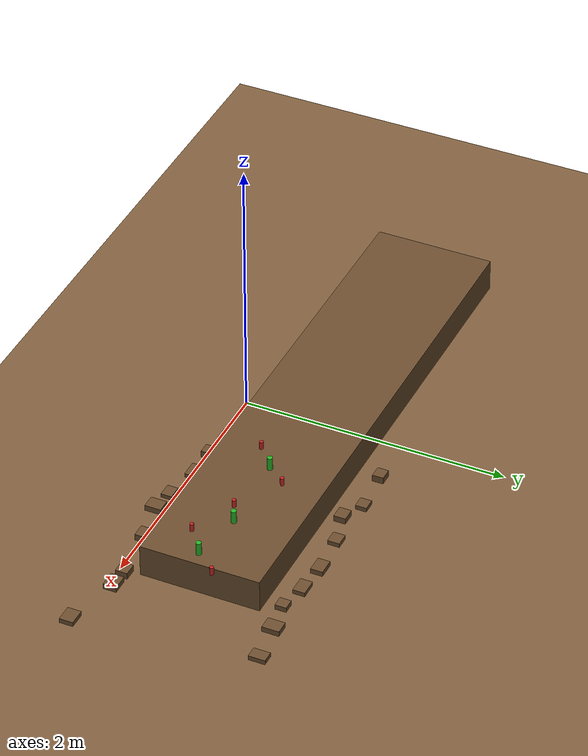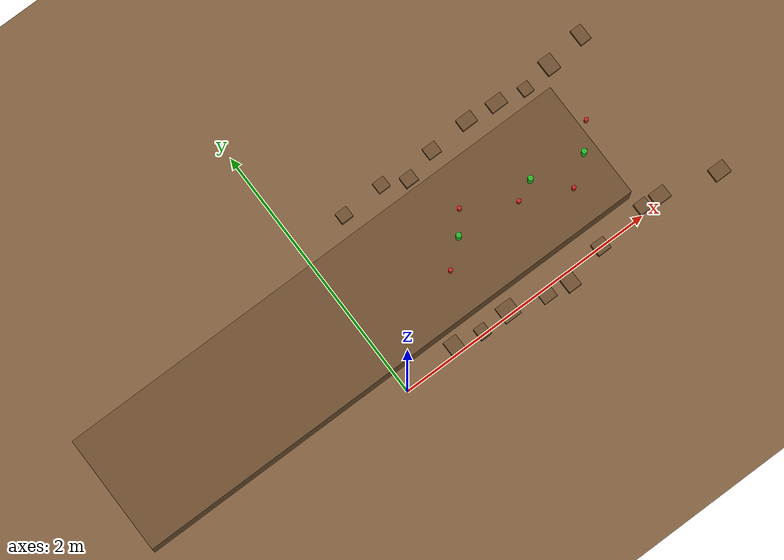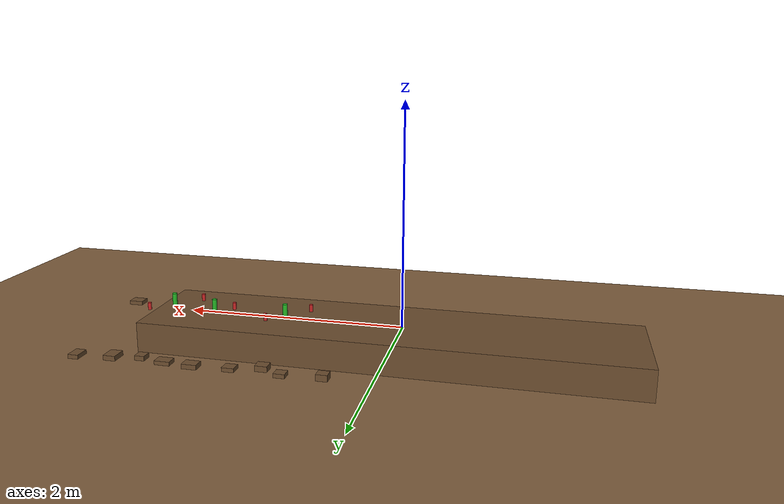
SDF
<sdf version="1.9">
 <world name="robot_strike">
  <physics name="1ms" type="ignored">
   <max_step_size>0.001</max_step_size>
   <real_time_factor>1.0</real_time_factor>
  </physics>
  <plugin filename="ignition-gazebo-physics-system" name="ignition::gazebo::systems::Physics"/>
  <plugin filename="ignition-gazebo-imu-system" name="ignition::gazebo::systems::Imu"/>
  <plugin filename="ignition-gazebo-scene-broadcaster-system" name="ignition::gazebo::systems::SceneBroadcaster"/>
  <plugin filename="ignition-gazebo-user-commands-system" name="ignition::gazebo::systems::UserCommands"/>
  <light type="directional" name="sun">
   <pose>0 0 10 0 0 0</pose>
   <diffuse>1 1 1 1</diffuse>
   <specular>0.3 0.3 0.3 1</specular>
   <direction>-0.4 0.4 -0.85</direction>
  </light>
  <model name="furrow_floor">
   <static>true</static>
   <pose>0 0.6 0 0.000000 0 0</pose>
   <link name="link">
    <collision name="c">
     <geometry><plane><normal>0 0 1</normal><size>100 100</size></plane></geometry>
     <surface><friction><ode><mu>1.0</mu><mu2>1.0</mu2></ode></friction></surface>
    </collision>
    <visual name="v">
     <geometry><plane><normal>0 0 1</normal><size>100 100</size></plane></geometry>
     <material><ambient>0.30 0.22 0.14 1</ambient><diffuse>0.50 0.37 0.24 1</diffuse></material>
    </visual>
   </link>
  </model>
  <model name="bed">
   <static>true</static>
   <pose>0 0.600 0.125 0 0 0</pose>
   <link name="link">
    <collision name="c"><geometry><box><size>4.00 0.90 0.25</size></box></geometry></collision>
    <visual name="v">
     <geometry><box><size>4.00 0.90 0.25</size></box></geometry>
     <material><ambient>0.25 0.17 0.10 1</ambient><diffuse>0.42 0.30 0.18 1</diffuse></material>
    </visual>
   </link>
  </model>
  <model name="clod_0">
   <static>true</static>
   <pose>0.437 0.059 0.022 0 0 0</pose>
   <link name="l">
    <collision name="c">
     <geometry><box><size>0.105 0.109 0.044</size></box></geometry>
     <surface><friction><ode><mu>1.0</mu><mu2>1.0</mu2></ode></friction></surface>
    </collision>
    <visual name="v">
     <geometry><box><size>0.105 0.109 0.044</size></box></geometry>
     <material><ambient>0.28 0.20 0.12 1</ambient><diffuse>0.42 0.30 0.18 1</diffuse></material>
    </visual>
   </link>
  </model>
  <model name="clod_1">
   <static>true</static>
   <pose>0.646 0.018 0.027 0 0 0</pose>
   <link name="l">
    <collision name="c">
     <geometry><box><size>0.085 0.095 0.054</size></box></geometry>
     <surface><friction><ode><mu>1.0</mu><mu2>1.0</mu2></ode></friction></surface>
    </collision>
    <visual name="v">
     <geometry><box><size>0.085 0.095 0.054</size></box></geometry>
     <material><ambient>0.28 0.20 0.12 1</ambient><diffuse>0.42 0.30 0.18 1</diffuse></material>
    </visual>
   </link>
  </model>
  <model name="clod_2">
   <static>true</static>
   <pose>0.872 0.027 0.016 0 0 0</pose>
   <link name="l">
    <collision name="c">
     <geometry><box><size>0.129 0.128 0.031</size></box></geometry>
     <surface><friction><ode><mu>1.0</mu><mu2>1.0</mu2></ode></friction></surface>
    </collision>
    <visual name="v">
     <geometry><box><size>0.129 0.128 0.031</size></box></geometry>
     <material><ambient>0.28 0.20 0.12 1</ambient><diffuse>0.42 0.30 0.18 1</diffuse></material>
    </visual>
   </link>
  </model>
  <model name="clod_3">
   <static>true</static>
   <pose>1.150 -0.048 0.015 0 0 0</pose>
   <link name="l">
    <collision name="c">
     <geometry><box><size>0.106 0.083 0.030</size></box></geometry>
     <surface><friction><ode><mu>1.0</mu><mu2>1.0</mu2></ode></friction></surface>
    </collision>
    <visual name="v">
     <geometry><box><size>0.106 0.083 0.030</size></box></geometry>
     <material><ambient>0.28 0.20 0.12 1</ambient><diffuse>0.42 0.30 0.18 1</diffuse></material>
    </visual>
   </link>
  </model>
  <model name="clod_4">
   <static>true</static>
   <pose>1.327 -0.066 0.022 0 0 0</pose>
   <link name="l">
    <collision name="c">
     <geometry><box><size>0.102 0.122 0.044</size></box></geometry>
     <surface><friction><ode><mu>1.0</mu><mu2>1.0</mu2></ode></friction></surface>
    </collision>
    <visual name="v">
     <geometry><box><size>0.102 0.122 0.044</size></box></geometry>
     <material><ambient>0.28 0.20 0.12 1</ambient><diffuse>0.42 0.30 0.18 1</diffuse></material>
    </visual>
   </link>
  </model>
  <model name="clod_5">
   <static>true</static>
   <pose>1.640 -0.000 0.025 0 0 0</pose>
   <link name="l">
    <collision name="c">
     <geometry><box><size>0.103 0.094 0.050</size></box></geometry>
     <surface><friction><ode><mu>1.0</mu><mu2>1.0</mu2></ode></friction></surface>
    </collision>
    <visual name="v">
     <geometry><box><size>0.103 0.094 0.050</size></box></geometry>
     <material><ambient>0.28 0.20 0.12 1</ambient><diffuse>0.42 0.30 0.18 1</diffuse></material>
    </visual>
   </link>
  </model>
  <model name="clod_6">
   <static>true</static>
   <pose>2.036 0.048 0.026 0 0 0</pose>
   <link name="l">
    <collision name="c">
     <geometry><box><size>0.096 0.091 0.051</size></box></geometry>
     <surface><friction><ode><mu>1.0</mu><mu2>1.0</mu2></ode></friction></surface>
    </collision>
    <visual name="v">
     <geometry><box><size>0.096 0.091 0.051</size></box></geometry>
     <material><ambient>0.28 0.20 0.12 1</ambient><diffuse>0.42 0.30 0.18 1</diffuse></material>
    </visual>
   </link>
  </model>
  <model name="clod_7">
   <static>true</static>
   <pose>2.175 0.037 0.021 0 0 0</pose>
   <link name="l">
    <collision name="c">
     <geometry><box><size>0.122 0.099 0.042</size></box></geometry>
     <surface><friction><ode><mu>1.0</mu><mu2>1.0</mu2></ode></friction></surface>
    </collision>
    <visual name="v">
     <geometry><box><size>0.122 0.099 0.042</size></box></geometry>
     <material><ambient>0.28 0.20 0.12 1</ambient><diffuse>0.42 0.30 0.18 1</diffuse></material>
    </visual>
   </link>
  </model>
  <model name="clod_8">
   <static>true</static>
   <pose>2.605 -0.070 0.018 0 0 0</pose>
   <link name="l">
    <collision name="c">
     <geometry><box><size>0.126 0.103 0.036</size></box></geometry>
     <surface><friction><ode><mu>1.0</mu><mu2>1.0</mu2></ode></friction></surface>
    </collision>
    <visual name="v">
     <geometry><box><size>0.126 0.103 0.036</size></box></geometry>
     <material><ambient>0.28 0.20 0.12 1</ambient><diffuse>0.42 0.30 0.18 1</diffuse></material>
    </visual>
   </link>
  </model>
  <model name="clod_9">
   <static>true</static>
   <pose>0.379 1.218 0.027 0 0 0</pose>
   <link name="l">
    <collision name="c">
     <geometry><box><size>0.093 0.084 0.053</size></box></geometry>
     <surface><friction><ode><mu>1.0</mu><mu2>1.0</mu2></ode></friction></surface>
    </collision>
    <visual name="v">
     <geometry><box><size>0.093 0.084 0.053</size></box></geometry>
     <material><ambient>0.28 0.20 0.12 1</ambient><diffuse>0.42 0.30 0.18 1</diffuse></material>
    </visual>
   </link>
  </model>
  <model name="clod_10">
   <static>true</static>
   <pose>0.708 1.236 0.017 0 0 0</pose>
   <link name="l">
    <collision name="c">
     <geometry><box><size>0.092 0.085 0.034</size></box></geometry>
     <surface><friction><ode><mu>1.0</mu><mu2>1.0</mu2></ode></friction></surface>
    </collision>
    <visual name="v">
     <geometry><box><size>0.092 0.085 0.034</size></box></geometry>
     <material><ambient>0.28 0.20 0.12 1</ambient><diffuse>0.42 0.30 0.18 1</diffuse></material>
    </visual>
   </link>
  </model>
  <model name="clod_11">
   <static>true</static>
   <pose>0.882 1.155 0.023 0 0 0</pose>
   <link name="l">
    <collision name="c">
     <geometry><box><size>0.102 0.090 0.047</size></box></geometry>
     <surface><friction><ode><mu>1.0</mu><mu2>1.0</mu2></ode></friction></surface>
    </collision>
    <visual name="v">
     <geometry><box><size>0.102 0.090 0.047</size></box></geometry>
     <material><ambient>0.28 0.20 0.12 1</ambient><diffuse>0.42 0.30 0.18 1</diffuse></material>
    </visual>
   </link>
  </model>
  <model name="clod_12">
   <static>true</static>
   <pose>1.127 1.220 0.017 0 0 0</pose>
   <link name="l">
    <collision name="c">
     <geometry><box><size>0.101 0.091 0.033</size></box></geometry>
     <surface><friction><ode><mu>1.0</mu><mu2>1.0</mu2></ode></friction></surface>
    </collision>
    <visual name="v">
     <geometry><box><size>0.101 0.091 0.033</size></box></geometry>
     <material><ambient>0.28 0.20 0.12 1</ambient><diffuse>0.42 0.30 0.18 1</diffuse></material>
    </visual>
   </link>
  </model>
  <model name="clod_13">
   <static>true</static>
   <pose>1.440 1.242 0.020 0 0 0</pose>
   <link name="l">
    <collision name="c">
     <geometry><box><size>0.124 0.091 0.039</size></box></geometry>
     <surface><friction><ode><mu>1.0</mu><mu2>1.0</mu2></ode></friction></surface>
    </collision>
    <visual name="v">
     <geometry><box><size>0.124 0.091 0.039</size></box></geometry>
     <material><ambient>0.28 0.20 0.12 1</ambient><diffuse>0.42 0.30 0.18 1</diffuse></material>
    </visual>
   </link>
  </model>
  <model name="clod_14">
   <static>true</static>
   <pose>1.679 1.220 0.017 0 0 0</pose>
   <link name="l">
    <collision name="c">
     <geometry><box><size>0.129 0.091 0.033</size></box></geometry>
     <surface><friction><ode><mu>1.0</mu><mu2>1.0</mu2></ode></friction></surface>
    </collision>
    <visual name="v">
     <geometry><box><size>0.129 0.091 0.033</size></box></geometry>
     <material><ambient>0.28 0.20 0.12 1</ambient><diffuse>0.42 0.30 0.18 1</diffuse></material>
    </visual>
   </link>
  </model>
  <model name="clod_15">
   <static>true</static>
   <pose>1.897 1.176 0.019 0 0 0</pose>
   <link name="l">
    <collision name="c">
     <geometry><box><size>0.084 0.085 0.039</size></box></geometry>
     <surface><friction><ode><mu>1.0</mu><mu2>1.0</mu2></ode></friction></surface>
    </collision>
    <visual name="v">
     <geometry><box><size>0.084 0.085 0.039</size></box></geometry>
     <material><ambient>0.28 0.20 0.12 1</ambient><diffuse>0.42 0.30 0.18 1</diffuse></material>
    </visual>
   </link>
  </model>
  <model name="clod_16">
   <static>true</static>
   <pose>2.129 1.214 0.021 0 0 0</pose>
   <link name="l">
    <collision name="c">
     <geometry><box><size>0.103 0.128 0.041</size></box></geometry>
     <surface><friction><ode><mu>1.0</mu><mu2>1.0</mu2></ode></friction></surface>
    </collision>
    <visual name="v">
     <geometry><box><size>0.103 0.128 0.041</size></box></geometry>
     <material><ambient>0.28 0.20 0.12 1</ambient><diffuse>0.42 0.30 0.18 1</diffuse></material>
    </visual>
   </link>
  </model>
  <model name="clod_17">
   <static>true</static>
   <pose>2.429 1.251 0.018 0 0 0</pose>
   <link name="l">
    <collision name="c">
     <geometry><box><size>0.088 0.125 0.035</size></box></geometry>
     <surface><friction><ode><mu>1.0</mu><mu2>1.0</mu2></ode></friction></surface>
    </collision>
    <visual name="v">
     <geometry><box><size>0.088 0.125 0.035</size></box></geometry>
     <material><ambient>0.28 0.20 0.12 1</ambient><diffuse>0.42 0.30 0.18 1</diffuse></material>
    </visual>
   </link>
  </model>
  <model name="weed_0">
   <static>true</static>
   <pose>0.700 0.450 0.280 0 0 0</pose>
   <link name="l">
    <visual name="v">
     <geometry><cylinder><radius>0.015</radius><length>0.06</length></cylinder></geometry>
     <material><ambient>0.55 0.10 0.10 1</ambient><diffuse>0.77 0.14 0.14 1</diffuse></material>
    </visual>
   </link>
  </model>
  <model name="weed_1">
   <static>true</static>
   <pose>1.000 0.750 0.280 0 0 0</pose>
   <link name="l">
    <visual name="v">
     <geometry><cylinder><radius>0.015</radius><length>0.06</length></cylinder></geometry>
     <material><ambient>0.55 0.10 0.10 1</ambient><diffuse>0.77 0.14 0.14 1</diffuse></material>
    </visual>
   </link>
  </model>
  <model name="weed_2">
   <static>true</static>
   <pose>1.350 0.550 0.280 0 0 0</pose>
   <link name="l">
    <visual name="v">
     <geometry><cylinder><radius>0.015</radius><length>0.06</length></cylinder></geometry>
     <material><ambient>0.55 0.10 0.10 1</ambient><diffuse>0.77 0.14 0.14 1</diffuse></material>
    </visual>
   </link>
  </model>
  <model name="weed_3">
   <static>true</static>
   <pose>1.700 0.400 0.280 0 0 0</pose>
   <link name="l">
    <visual name="v">
     <geometry><cylinder><radius>0.015</radius><length>0.06</length></cylinder></geometry>
     <material><ambient>0.55 0.10 0.10 1</ambient><diffuse>0.77 0.14 0.14 1</diffuse></material>
    </visual>
   </link>
  </model>
  <model name="weed_4">
   <static>true</static>
   <pose>2.050 0.720 0.280 0 0 0</pose>
   <link name="l">
    <visual name="v">
     <geometry><cylinder><radius>0.015</radius><length>0.06</length></cylinder></geometry>
     <material><ambient>0.55 0.10 0.10 1</ambient><diffuse>0.77 0.14 0.14 1</diffuse></material>
    </visual>
   </link>
  </model>
  <model name="crop_0">
   <static>true</static>
   <pose>0.880 0.600 0.300 0 0 0</pose>
   <link name="l">
    <visual name="v">
     <geometry><cylinder><radius>0.02</radius><length>0.1</length></cylinder></geometry>
     <material><ambient>0.10 0.50 0.10 1</ambient><diffuse>0.14 0.70 0.14 1</diffuse></material>
    </visual>
   </link>
  </model>
  <model name="crop_1">
   <static>true</static>
   <pose>1.500 0.620 0.300 0 0 0</pose>
   <link name="l">
    <visual name="v">
     <geometry><cylinder><radius>0.02</radius><length>0.1</length></cylinder></geometry>
     <material><ambient>0.10 0.50 0.10 1</ambient><diffuse>0.14 0.70 0.14 1</diffuse></material>
    </visual>
   </link>
  </model>
  <model name="crop_2">
   <static>true</static>
   <pose>1.900 0.550 0.300 0 0 0</pose>
   <link name="l">
    <visual name="v">
     <geometry><cylinder><radius>0.02</radius><length>0.1</length></cylinder></geometry>
     <material><ambient>0.10 0.50 0.10 1</ambient><diffuse>0.14 0.70 0.14 1</diffuse></material>
    </visual>
   </link>
  </model>
 </world>
</sdf>
